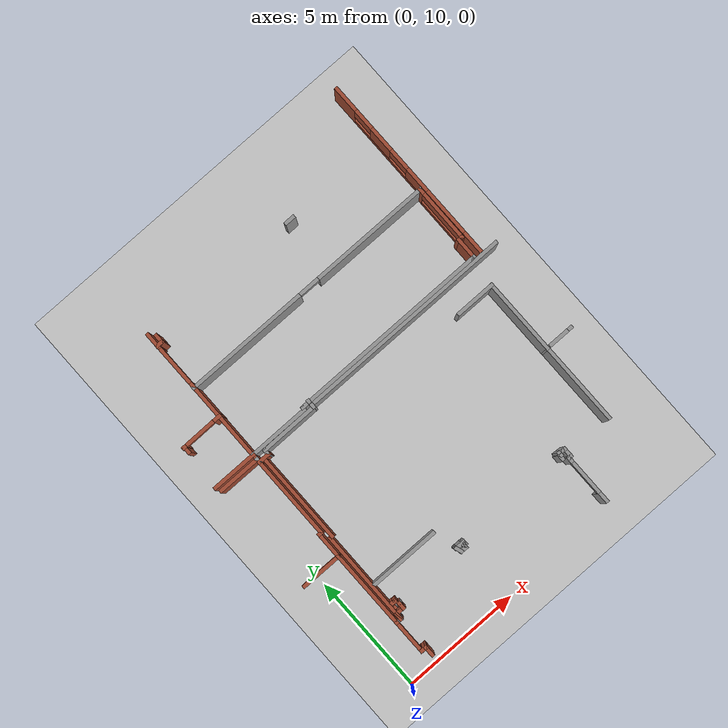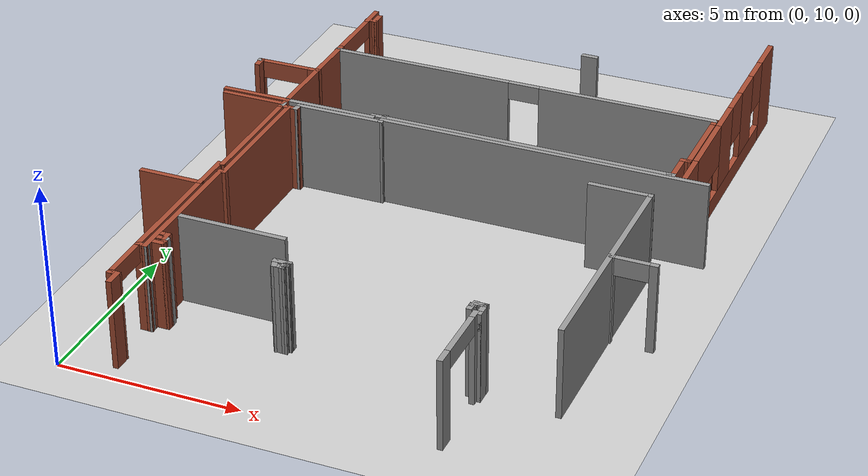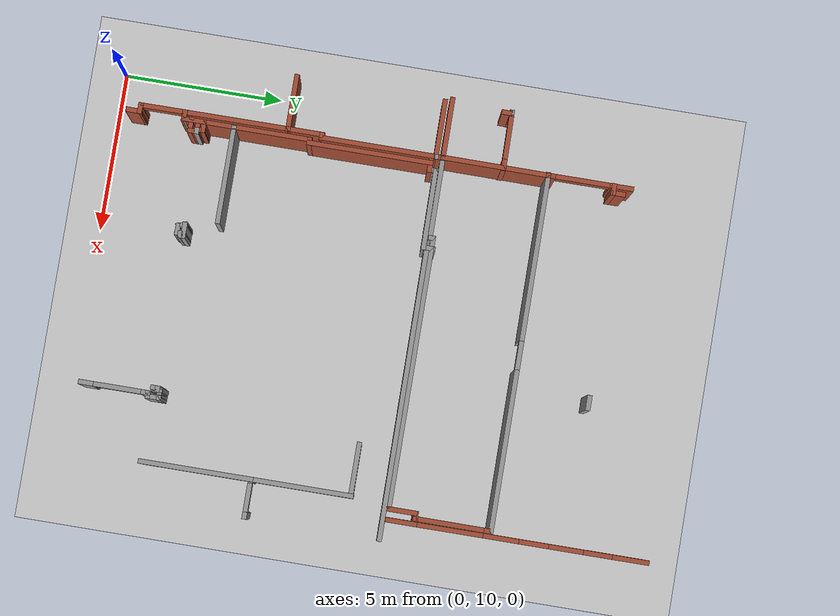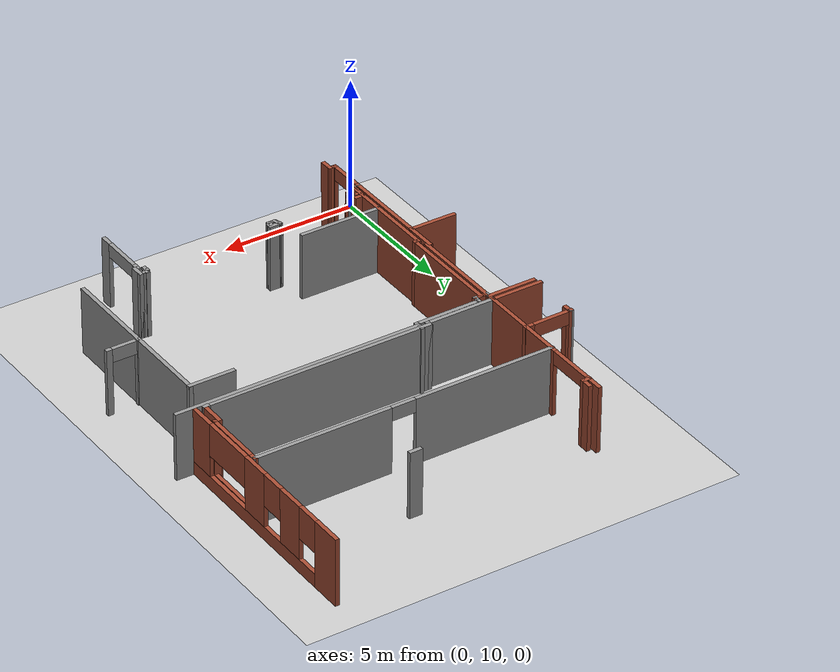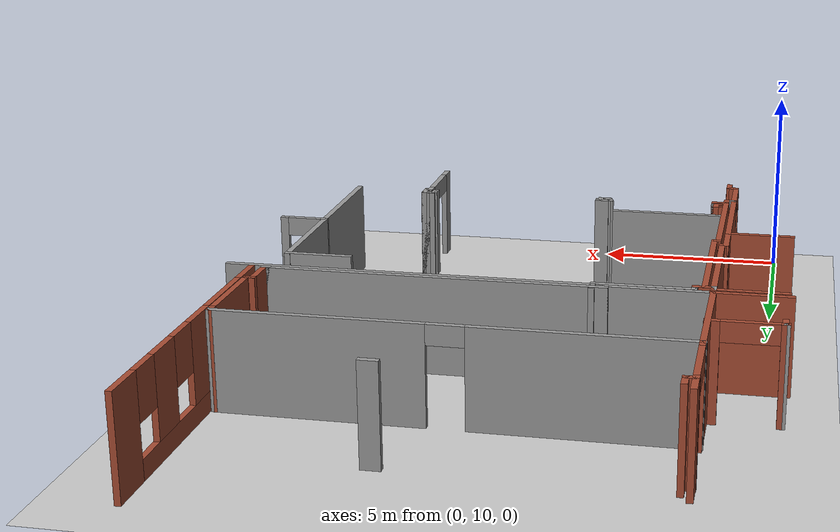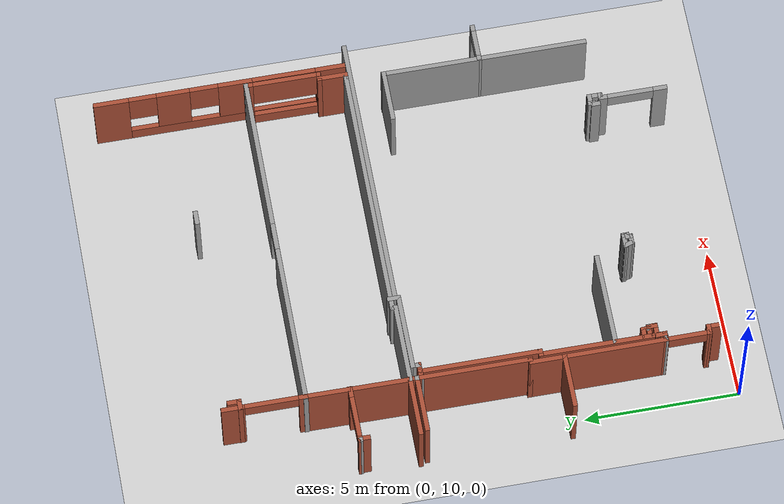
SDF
<sdf version="1.6">
 <world name="default">
  <model name="ground_plane">
   <static>1</static>
   <link name="link">
    <collision name="collision">
     <geometry><plane><normal>0 0 1</normal><size>100 100</size></plane></geometry>
     <surface><friction><ode><mu>100</mu><mu2>50</mu2></ode></friction></surface>
    </collision>
    <visual name="visual">
     <cast_shadows>0</cast_shadows>
     <geometry><plane><normal>0 0 1</normal><size>100 100</size></plane></geometry>
     <material>
      <script><uri>file://media/materials/scripts/gazebo.material</uri><name>Gazebo/Grey</name></script>
     </material>
    </visual>
   </link>
  </model>
  <model name="CVSSP">
   <pose>23.8714 24.094 0 0 -0 0</pose>
   <link name="Wall_440">
    <pose>-17.0303 -0.419062 0 0 -0 3.14158</pose>
    <visual name="Wall_440_Visual_0">
     <pose>-3.09878 0 1.25 0 -0 0</pose>
     <geometry><box><size>5.103 0.15 2.5</size></box></geometry>
     <material>
      <script><uri>file://media/materials/scripts/gazebo.material</uri><name>Gazebo/Grey</name></script>
      <ambient>0.588235 0.588235 0.588235 1</ambient>
     </material>
    </visual>
    <collision name="Wall_440_Collision_0">
     <geometry><box><size>5.103 0.15 2.5</size></box></geometry>
     <pose>-3.09878 0 1.25 0 -0 0</pose>
    </collision>
    <visual name="Wall_440_Visual_1">
     <pose>3.0015 0 1.25 0 -0 0</pose>
     <geometry><box><size>5.29756 0.15 2.5</size></box></geometry>
     <material>
      <script><uri>file://media/materials/scripts/gazebo.material</uri><name>Gazebo/Grey</name></script>
      <ambient>0.588235 0.588235 0.588235 1</ambient>
     </material>
    </visual>
    <collision name="Wall_440_Collision_1">
     <geometry><box><size>5.29756 0.15 2.5</size></box></geometry>
     <pose>3.0015 0 1.25 0 -0 0</pose>
    </collision>
    <visual name="Wall_440_Visual_2">
     <pose>-0.097282 0 2.25 0 -0 0</pose>
     <geometry><box><size>0.9 0.15 0.5</size></box></geometry>
     <material>
      <script><uri>file://media/materials/scripts/gazebo.material</uri><name>Gazebo/Grey</name></script>
      <ambient>0.588235 0.588235 0.588235 1</ambient>
     </material>
    </visual>
    <collision name="Wall_440_Collision_2">
     <geometry><box><size>0.9 0.15 0.5</size></box></geometry>
     <pose>-0.097282 0 2.25 0 -0 0</pose>
    </collision>
   </link>
   <link name="Wall_441">
    <pose>-22.5881 0.881009 0 0 -0 1.5708</pose>
    <visual name="Wall_441_Visual_0">
     <pose>-1.22545 0 1.25 0 -0 0</pose>
     <geometry><box><size>0.299105 0.15 2.5</size></box></geometry>
     <material>
      <script><uri>file://media/materials/scripts/gazebo.material</uri><name>Gazebo/Bricks</name></script>
      <ambient>1 1 1 1</ambient>
     </material>
    </visual>
    <collision name="Wall_441_Collision_0">
     <geometry><box><size>0.299105 0.15 2.5</size></box></geometry>
     <pose>-1.22545 0 1.25 0 -0 0</pose>
    </collision>
    <visual name="Wall_441_Visual_1">
     <pose>1.00205 0 1.25 0 -0 0</pose>
     <geometry><box><size>0.745895 0.15 2.5</size></box></geometry>
     <material>
      <script><uri>file://media/materials/scripts/gazebo.material</uri><name>Gazebo/Bricks</name></script>
      <ambient>1 1 1 1</ambient>
     </material>
    </visual>
    <collision name="Wall_441_Collision_1">
     <geometry><box><size>0.745895 0.15 2.5</size></box></geometry>
     <pose>1.00205 0 1.25 0 -0 0</pose>
    </collision>
    <visual name="Wall_441_Visual_2">
     <pose>-0.223395 0 2.25 0 -0 0</pose>
     <geometry><box><size>1.705 0.15 0.5</size></box></geometry>
     <material>
      <script><uri>file://media/materials/scripts/gazebo.material</uri><name>Gazebo/Bricks</name></script>
      <ambient>1 1 1 1</ambient>
     </material>
    </visual>
    <collision name="Wall_441_Collision_2">
     <geometry><box><size>1.705 0.15 0.5</size></box></geometry>
     <pose>-0.223395 0 2.25 0 -0 0</pose>
    </collision>
   </link>
   <link name="Wall_446">
    <collision name="Wall_446_Collision">
     <geometry><box><size>3.45993 0.15 2.5</size></box></geometry>
     <pose>0 0 1.25 0 -0 0</pose>
    </collision>
    <visual name="Wall_446_Visual">
     <pose>0 0 1.25 0 -0 0</pose>
     <geometry><box><size>3.45993 0.15 2.5</size></box></geometry>
     <material>
      <script><uri>file://media/materials/scripts/gazebo.material</uri><name>Gazebo/Bricks</name></script>
      <ambient>1 1 1 1</ambient>
     </material>
    </visual>
    <pose>-22.5968 -2.07393 0 0 0 -1.57608</pose>
   </link>
   <link name="Wall_447">
    <collision name="Wall_447_Collision">
     <geometry><box><size>2.66471 0.15 2.5</size></box></geometry>
     <pose>0 0 1.25 0 -0 0</pose>
    </collision>
    <visual name="Wall_447_Visual">
     <pose>0 0 1.25 0 -0 0</pose>
     <geometry><box><size>2.66471 0.15 2.5</size></box></geometry>
     <material>
      <script><uri>file://media/materials/scripts/gazebo.material</uri><name>Gazebo/Grey</name></script>
      <ambient>0.588235 0.588235 0.588235 1</ambient>
     </material>
    </visual>
    <pose>-21.3307 -3.72683 0 0 -0 0.001626</pose>
   </link>
   <link name="Wall_449">
    <collision name="Wall_449_Collision">
     <geometry><box><size>0.25 0.15 2.5</size></box></geometry>
     <pose>0 0 1.25 0 -0 0</pose>
    </collision>
    <visual name="Wall_449_Visual">
     <pose>0 0 1.25 0 -0 0</pose>
     <geometry><box><size>0.25 0.15 2.5</size></box></geometry>
     <material>
      <script><uri>file://media/materials/scripts/gazebo.material</uri><name>Gazebo/Grey</name></script>
      <ambient>1 1 1 1</ambient>
     </material>
    </visual>
    <pose>-20.0734 -3.67478 0 0 -0 1.5708</pose>
   </link>
   <link name="Wall_450">
    <collision name="Wall_450_Collision">
     <geometry><box><size>8.5 0.15 2.5</size></box></geometry>
     <pose>0 0 1.25 0 -0 0</pose>
    </collision>
    <visual name="Wall_450_Visual">
     <pose>0 0 1.25 0 -0 0</pose>
     <geometry><box><size>8.5 0.15 2.5</size></box></geometry>
     <material>
      <script><uri>file://media/materials/scripts/gazebo.material</uri><name>Gazebo/Grey</name></script>
      <ambient>0.588235 0.588235 0.588235 1</ambient>
     </material>
    </visual>
    <pose>-15.8984 -3.62478 0 0 -0 0</pose>
   </link>
   <link name="Wall_451">
    <collision name="Wall_451_Collision">
     <geometry><box><size>0.25 0.15 2.5</size></box></geometry>
     <pose>0 0 1.25 0 -0 0</pose>
    </collision>
    <visual name="Wall_451_Visual">
     <pose>0 0 1.25 0 -0 0</pose>
     <geometry><box><size>0.25 0.15 2.5</size></box></geometry>
     <material>
      <script><uri>file://media/materials/scripts/gazebo.material</uri><name>Gazebo/Grey</name></script>
      <ambient>1 1 1 1</ambient>
     </material>
    </visual>
    <pose>-11.6734 -3.62478 0 0 -0 0</pose>
   </link>
   <link name="Wall_452">
    <collision name="Wall_452_Collision">
     <geometry><box><size>1 0.15 2.5</size></box></geometry>
     <pose>0 0 1.25 0 -0 0</pose>
    </collision>
    <visual name="Wall_452_Visual">
     <pose>0 0 1.25 0 -0 0</pose>
     <geometry><box><size>1 0.15 2.5</size></box></geometry>
     <material>
      <script><uri>file://media/materials/scripts/gazebo.material</uri><name>Gazebo/Bricks</name></script>
      <ambient>1 1 1 1</ambient>
     </material>
    </visual>
    <pose>-11.6234 -3.19978 0 0 -0 1.5708</pose>
   </link>
   <link name="Wall_453">
    <collision name="Wall_453_Collision">
     <geometry><box><size>0.31087 0.15 2.5</size></box></geometry>
     <pose>0 0 1.25 0 -0 0</pose>
    </collision>
    <visual name="Wall_453_Visual">
     <pose>0 0 1.25 0 -0 0</pose>
     <geometry><box><size>0.31087 0.15 2.5</size></box></geometry>
     <material>
      <script><uri>file://media/materials/scripts/gazebo.material</uri><name>Gazebo/Bricks</name></script>
      <ambient>1 1 1 1</ambient>
     </material>
    </visual>
    <pose>-11.543 -2.77478 0 0 -0 0</pose>
   </link>
   <link name="Wall_456">
    <pose>-11.4588 -1.59696 0 0 0 -1.57398</pose>
    <visual name="Wall_456_Visual_0">
     <pose>-1.10718 0 1.25 0 -0 0</pose>
     <geometry><box><size>0.291309 0.15 2.5</size></box></geometry>
     <material>
      <script><uri>file://media/materials/scripts/gazebo.material</uri><name>Gazebo/Bricks</name></script>
      <ambient>1 1 1 1</ambient>
     </material>
    </visual>
    <collision name="Wall_456_Collision_0">
     <geometry><box><size>0.291309 0.15 2.5</size></box></geometry>
     <pose>-1.10718 0 1.25 0 -0 0</pose>
    </collision>
    <visual name="Wall_456_Visual_1">
     <pose>0.145655 0 0.25 0 -0 0</pose>
     <geometry><box><size>2.21435 0.15 0.5</size></box></geometry>
     <material>
      <script><uri>file://media/materials/scripts/gazebo.material</uri><name>Gazebo/Bricks</name></script>
      <ambient>1 1 1 1</ambient>
     </material>
    </visual>
    <collision name="Wall_456_Collision_1">
     <geometry><box><size>2.21435 0.15 0.5</size></box></geometry>
     <pose>0.145655 0 0.25 0 -0 0</pose>
    </collision>
    <visual name="Wall_456_Visual_2">
     <pose>1.18044 0 1.5 0 -0 0</pose>
     <geometry><box><size>0.144785 0.15 2</size></box></geometry>
     <material>
      <script><uri>file://media/materials/scripts/gazebo.material</uri><name>Gazebo/Bricks</name></script>
      <ambient>1 1 1 1</ambient>
     </material>
    </visual>
    <collision name="Wall_456_Collision_2">
     <geometry><box><size>0.144785 0.15 2</size></box></geometry>
     <pose>1.18044 0 1.5 0 -0 0</pose>
    </collision>
    <visual name="Wall_456_Visual_3">
     <pose>0.073262 0 1.9 0 -0 0</pose>
     <geometry><box><size>2.06957 0.15 1.2</size></box></geometry>
     <material>
      <script><uri>file://media/materials/scripts/gazebo.material</uri><name>Gazebo/Bricks</name></script>
      <ambient>1 1 1 1</ambient>
     </material>
    </visual>
    <collision name="Wall_456_Collision_3">
     <geometry><box><size>2.06957 0.15 1.2</size></box></geometry>
     <pose>0.073262 0 1.9 0 -0 0</pose>
    </collision>
   </link>
   <link name="Wall_462">
    <pose>-11.2891 0.422048 0 0 0 -1.5708</pose>
    <visual name="Wall_462_Visual_0">
     <pose>-3.525 0 1.25 0 -0 0</pose>
     <geometry><box><size>1.14727 0.15 2.5</size></box></geometry>
     <material>
      <script><uri>file://media/materials/scripts/gazebo.material</uri><name>Gazebo/Bricks</name></script>
      <ambient>1 1 1 1</ambient>
     </material>
    </visual>
    <collision name="Wall_462_Collision_0">
     <geometry><box><size>1.14727 0.15 2.5</size></box></geometry>
     <pose>-3.525 0 1.25 0 -0 0</pose>
    </collision>
    <visual name="Wall_462_Visual_1">
     <pose>0.573634 0 0.25 0 -0 0</pose>
     <geometry><box><size>7.04999 0.15 0.5</size></box></geometry>
     <material>
      <script><uri>file://media/materials/scripts/gazebo.material</uri><name>Gazebo/Bricks</name></script>
      <ambient>1 1 1 1</ambient>
     </material>
    </visual>
    <collision name="Wall_462_Collision_1">
     <geometry><box><size>7.04999 0.15 0.5</size></box></geometry>
     <pose>0.573634 0 0.25 0 -0 0</pose>
    </collision>
    <visual name="Wall_462_Visual_2">
     <pose>-1.51444 0 1.5 0 -0 0</pose>
     <geometry><box><size>1.07833 0.15 2</size></box></geometry>
     <material>
      <script><uri>file://media/materials/scripts/gazebo.material</uri><name>Gazebo/Bricks</name></script>
      <ambient>1 1 1 1</ambient>
     </material>
    </visual>
    <collision name="Wall_462_Collision_2">
     <geometry><box><size>1.07833 0.15 2</size></box></geometry>
     <pose>-1.51444 0 1.5 0 -0 0</pose>
    </collision>
    <visual name="Wall_462_Visual_3">
     <pose>0.505032 0 1.5 0 -0 0</pose>
     <geometry><box><size>1.11295 0.15 2</size></box></geometry>
     <material>
      <script><uri>file://media/materials/scripts/gazebo.material</uri><name>Gazebo/Bricks</name></script>
      <ambient>1 1 1 1</ambient>
     </material>
    </visual>
    <collision name="Wall_462_Collision_3">
     <geometry><box><size>1.11295 0.15 2</size></box></geometry>
     <pose>0.505032 0 1.5 0 -0 0</pose>
    </collision>
    <visual name="Wall_462_Visual_4">
     <pose>3.60899 0 1.5 0 -0 0</pose>
     <geometry><box><size>0.979272 0.15 2</size></box></geometry>
     <material>
      <script><uri>file://media/materials/scripts/gazebo.material</uri><name>Gazebo/Bricks</name></script>
      <ambient>1 1 1 1</ambient>
     </material>
    </visual>
    <collision name="Wall_462_Collision_4">
     <geometry><box><size>0.979272 0.15 2</size></box></geometry>
     <pose>3.60899 0 1.5 0 -0 0</pose>
    </collision>
    <visual name="Wall_462_Visual_5">
     <pose>-2.50248 0 1.9 0 -0 0</pose>
     <geometry><box><size>0.89776 0.15 1.2</size></box></geometry>
     <material>
      <script><uri>file://media/materials/scripts/gazebo.material</uri><name>Gazebo/Bricks</name></script>
      <ambient>1 1 1 1</ambient>
     </material>
    </visual>
    <collision name="Wall_462_Collision_5">
     <geometry><box><size>0.89776 0.15 1.2</size></box></geometry>
     <pose>-2.50248 0 1.9 0 -0 0</pose>
    </collision>
    <visual name="Wall_462_Visual_6">
     <pose>-0.513357 0 1.9 0 -0 0</pose>
     <geometry><box><size>0.92383 0.15 1.2</size></box></geometry>
     <material>
      <script><uri>file://media/materials/scripts/gazebo.material</uri><name>Gazebo/Bricks</name></script>
      <ambient>1 1 1 1</ambient>
     </material>
    </visual>
    <collision name="Wall_462_Collision_6">
     <geometry><box><size>0.92383 0.15 1.2</size></box></geometry>
     <pose>-0.513357 0 1.9 0 -0 0</pose>
    </collision>
    <visual name="Wall_462_Visual_7">
     <pose>2.09043 0 1.9 0 -0 0</pose>
     <geometry><box><size>2.05785 0.15 1.2</size></box></geometry>
     <material>
      <script><uri>file://media/materials/scripts/gazebo.material</uri><name>Gazebo/Bricks</name></script>
      <ambient>1 1 1 1</ambient>
     </material>
    </visual>
    <collision name="Wall_462_Collision_7">
     <geometry><box><size>2.05785 0.15 1.2</size></box></geometry>
     <pose>2.09043 0 1.9 0 -0 0</pose>
    </collision>
   </link>
   <link name="Wall_472">
    <pose>-23.462 -1.83453 0 0 0 -3.13211</pose>
    <visual name="Wall_472_Visual_0">
     <pose>-0.773733 0 1.25 0 -0 0</pose>
     <geometry><box><size>0.368389 0.15 2.5</size></box></geometry>
     <material>
      <script><uri>file://media/materials/scripts/gazebo.material</uri><name>Gazebo/Bricks</name></script>
      <ambient>1 1 1 1</ambient>
     </material>
    </visual>
    <collision name="Wall_472_Collision_0">
     <geometry><box><size>0.368389 0.15 2.5</size></box></geometry>
     <pose>-0.773733 0 1.25 0 -0 0</pose>
    </collision>
    <visual name="Wall_472_Visual_1">
     <pose>0.857678 0 1.25 0 -0 0</pose>
     <geometry><box><size>0.2005 0.15 2.5</size></box></geometry>
     <material>
      <script><uri>file://media/materials/scripts/gazebo.material</uri><name>Gazebo/Bricks</name></script>
      <ambient>1 1 1 1</ambient>
     </material>
    </visual>
    <collision name="Wall_472_Collision_1">
     <geometry><box><size>0.2005 0.15 2.5</size></box></geometry>
     <pose>0.857678 0 1.25 0 -0 0</pose>
    </collision>
    <visual name="Wall_472_Visual_2">
     <pose>0.083944 0 2.25 0 -0 0</pose>
     <geometry><box><size>1.34697 0.15 0.5</size></box></geometry>
     <material>
      <script><uri>file://media/materials/scripts/gazebo.material</uri><name>Gazebo/Bricks</name></script>
      <ambient>1 1 1 1</ambient>
     </material>
    </visual>
    <collision name="Wall_472_Collision_2">
     <geometry><box><size>1.34697 0.15 0.5</size></box></geometry>
     <pose>0.083944 0 2.25 0 -0 0</pose>
    </collision>
   </link>
   <link name="Wall_473">
    <collision name="Wall_473_Collision">
     <geometry><box><size>0.15 0.15 2.5</size></box></geometry>
     <pose>0 0 1.25 0 -0 0</pose>
    </collision>
    <visual name="Wall_473_Visual">
     <pose>0 0 1.25 0 -0 0</pose>
     <geometry><box><size>0.15 0.15 2.5</size></box></geometry>
     <material>
      <script><uri>file://media/materials/scripts/gazebo.material</uri><name>Gazebo/Grey</name></script>
      <ambient>1 1 1 1</ambient>
     </material>
    </visual>
    <pose>-24.3449 -1.8429 0 0 -0 0</pose>
   </link>
   <link name="Wall_476">
    <collision name="Wall_476_Collision">
     <geometry><box><size>0.342391 0.15 2.5</size></box></geometry>
     <pose>0 0 1.25 0 -0 0</pose>
    </collision>
    <visual name="Wall_476_Visual">
     <pose>0 0 1.25 0 -0 0</pose>
     <geometry><box><size>0.342391 0.15 2.5</size></box></geometry>
     <material>
      <script><uri>file://media/materials/scripts/gazebo.material</uri><name>Gazebo/Bricks</name></script>
      <ambient>1 1 1 1</ambient>
     </material>
    </visual>
    <pose>-24.3099 -1.99157 0 0 -0 1.5708</pose>
   </link>
   <link name="Wall_481">
    <collision name="Wall_481_Collision">
     <geometry><box><size>2 0.15 2.5</size></box></geometry>
     <pose>0 0 1.25 0 -0 0</pose>
    </collision>
    <visual name="Wall_481_Visual">
     <pose>0 0 1.25 0 -0 0</pose>
     <geometry><box><size>2 0.15 2.5</size></box></geometry>
     <material>
      <script><uri>file://media/materials/scripts/gazebo.material</uri><name>Gazebo/Bricks</name></script>
      <ambient>1 1 1 1</ambient>
     </material>
    </visual>
    <pose>-23.5131 -3.72887 0 0 -0 3.14159</pose>
   </link>
   <link name="Wall_483">
    <collision name="Wall_483_Collision">
     <geometry><box><size>0.368526 0.15 2.5</size></box></geometry>
     <pose>0 0 1.25 0 -0 0</pose>
    </collision>
    <visual name="Wall_483_Visual">
     <pose>0 0 1.25 0 -0 0</pose>
     <geometry><box><size>0.368526 0.15 2.5</size></box></geometry>
     <material>
      <script><uri>file://media/materials/scripts/gazebo.material</uri><name>Gazebo/Bricks</name></script>
      <ambient>1 1 1 1</ambient>
     </material>
    </visual>
    <pose>-22.5906 -3.83811 0 0 0 -1.59404</pose>
   </link>
   <link name="Wall_484">
    <collision name="Wall_484_Collision">
     <geometry><box><size>1.89901 0.15 2.5</size></box></geometry>
     <pose>0 0 1.25 0 -0 0</pose>
    </collision>
    <visual name="Wall_484_Visual">
     <pose>0 0 1.25 0 -0 0</pose>
     <geometry><box><size>1.89901 0.15 2.5</size></box></geometry>
     <material>
      <script><uri>file://media/materials/scripts/gazebo.material</uri><name>Gazebo/Bricks</name></script>
      <ambient>1 1 1 1</ambient>
     </material>
    </visual>
    <pose>-23.4677 -3.94734 0 0 -0 3.14159</pose>
   </link>
   <link name="Wall_486">
    <collision name="Wall_486_Collision">
     <geometry><box><size>0.44095 0.15 2.5</size></box></geometry>
     <pose>0 0 1.25 0 -0 0</pose>
    </collision>
    <visual name="Wall_486_Visual">
     <pose>0 0 1.25 0 -0 0</pose>
     <geometry><box><size>0.44095 0.15 2.5</size></box></geometry>
     <material>
      <script><uri>file://media/materials/scripts/gazebo.material</uri><name>Gazebo/Grey</name></script>
      <ambient>1 1 1 1</ambient>
     </material>
    </visual>
    <pose>-19.7491 -3.7278 0 0 0 -1.5708</pose>
   </link>
   <link name="Wall_487">
    <collision name="Wall_487_Collision">
     <geometry><box><size>2.55302 0.15 2.5</size></box></geometry>
     <pose>0 0 1.25 0 -0 0</pose>
    </collision>
    <visual name="Wall_487_Visual">
     <pose>0 0 1.25 0 -0 0</pose>
     <geometry><box><size>2.55302 0.15 2.5</size></box></geometry>
     <material>
      <script><uri>file://media/materials/scripts/gazebo.material</uri><name>Gazebo/Grey</name></script>
      <ambient>0.588235 0.588235 0.588235 1</ambient>
     </material>
    </visual>
    <pose>-20.9506 -3.87989 0 0 0 -3.13609</pose>
   </link>
   <link name="Wall_488">
    <collision name="Wall_488_Collision">
     <geometry><box><size>0.348298 0.15 2.5</size></box></geometry>
     <pose>0 0 1.25 0 -0 0</pose>
    </collision>
    <visual name="Wall_488_Visual">
     <pose>0 0 1.25 0 -0 0</pose>
     <geometry><box><size>0.348298 0.15 2.5</size></box></geometry>
     <material>
      <script><uri>file://media/materials/scripts/gazebo.material</uri><name>Gazebo/Grey</name></script>
      <ambient>1 1 1 1</ambient>
     </material>
    </visual>
    <pose>-22.1597 -3.98536 0 0 0 -1.64757</pose>
   </link>
   <link name="Wall_490">
    <collision name="Wall_490_Collision">
     <geometry><box><size>0.287462 0.15 2.5</size></box></geometry>
     <pose>0 0 1.25 0 -0 0</pose>
    </collision>
    <visual name="Wall_490_Visual">
     <pose>0 0 1.25 0 -0 0</pose>
     <geometry><box><size>0.287462 0.15 2.5</size></box></geometry>
     <material>
      <script><uri>file://media/materials/scripts/gazebo.material</uri><name>Gazebo/Grey</name></script>
      <ambient>1 1 1 1</ambient>
     </material>
    </visual>
    <pose>-22.5946 -4.01605 0 0 0 -1.59176</pose>
   </link>
   <link name="Wall_491">
    <collision name="Wall_491_Collision">
     <geometry><box><size>0.593962 0.15 2.5</size></box></geometry>
     <pose>0 0 1.25 0 -0 0</pose>
    </collision>
    <visual name="Wall_491_Visual">
     <pose>0 0 1.25 0 -0 0</pose>
     <geometry><box><size>0.593962 0.15 2.5</size></box></geometry>
     <material>
      <script><uri>file://media/materials/scripts/gazebo.material</uri><name>Gazebo/Bricks</name></script>
      <ambient>1 1 1 1</ambient>
     </material>
    </visual>
    <pose>-22.3741 -4.08449 0 0 -0 0.001245</pose>
   </link>
   <link name="Wall_493">
    <collision name="Wall_493_Collision">
     <geometry><box><size>3.61071 0.15 2.5</size></box></geometry>
     <pose>0 0 1.25 0 -0 0</pose>
    </collision>
    <visual name="Wall_493_Visual">
     <pose>0 0 1.25 0 -0 0</pose>
     <geometry><box><size>3.61071 0.15 2.5</size></box></geometry>
     <material>
      <script><uri>file://media/materials/scripts/gazebo.material</uri><name>Gazebo/Bricks</name></script>
      <ambient>1 1 1 1</ambient>
     </material>
    </visual>
    <pose>-22.5979 -5.81513 0 0 0 -1.57189</pose>
   </link>
   <link name="Wall_494">
    <collision name="Wall_494_Collision">
     <geometry><box><size>0.25 0.15 2.5</size></box></geometry>
     <pose>0 0 1.25 0 -0 0</pose>
    </collision>
    <visual name="Wall_494_Visual">
     <pose>0 0 1.25 0 -0 0</pose>
     <geometry><box><size>0.25 0.15 2.5</size></box></geometry>
     <material>
      <script><uri>file://media/materials/scripts/gazebo.material</uri><name>Gazebo/Bricks</name></script>
      <ambient>1 1 1 1</ambient>
     </material>
    </visual>
    <pose>-22.6498 -7.54548 0 0 -0 3.14159</pose>
   </link>
   <link name="Wall_495">
    <collision name="Wall_495_Collision">
     <geometry><box><size>1.21522 0.15 2.5</size></box></geometry>
     <pose>0 0 1.25 0 -0 0</pose>
    </collision>
    <visual name="Wall_495_Visual">
     <pose>0 0 1.25 0 -0 0</pose>
     <geometry><box><size>1.21522 0.15 2.5</size></box></geometry>
     <material>
      <script><uri>file://media/materials/scripts/gazebo.material</uri><name>Gazebo/Bricks</name></script>
      <ambient>1 1 1 1</ambient>
     </material>
    </visual>
    <pose>-22.6998 -8.07809 0 0 0 -1.5708</pose>
   </link>
   <link name="Wall_497">
    <collision name="Wall_497_Collision">
     <geometry><box><size>1.80653 0.15 2.5</size></box></geometry>
     <pose>0 0 1.25 0 -0 0</pose>
    </collision>
    <visual name="Wall_497_Visual">
     <pose>0 0 1.25 0 -0 0</pose>
     <geometry><box><size>1.80653 0.15 2.5</size></box></geometry>
     <material>
      <script><uri>file://media/materials/scripts/gazebo.material</uri><name>Gazebo/Bricks</name></script>
      <ambient>1 1 1 1</ambient>
     </material>
    </visual>
    <pose>-23.5281 -8.61722 0 0 -0 3.13897</pose>
   </link>
   <link name="Wall_500">
    <collision name="Wall_500_Collision">
     <geometry><box><size>3.96739 0.15 2.5</size></box></geometry>
     <pose>0 0 1.25 0 -0 0</pose>
    </collision>
    <visual name="Wall_500_Visual">
     <pose>0 0 1.25 0 -0 0</pose>
     <geometry><box><size>3.96739 0.15 2.5</size></box></geometry>
     <material>
      <script><uri>file://media/materials/scripts/gazebo.material</uri><name>Gazebo/Bricks</name></script>
      <ambient>1 1 1 1</ambient>
     </material>
    </visual>
    <pose>-22.3824 -5.99331 0 0 0 -1.5708</pose>
   </link>
   <link name="Wall_502">
    <collision name="Wall_502_Collision">
     <geometry><box><size>0.25 0.15 2.5</size></box></geometry>
     <pose>0 0 1.25 0 -0 0</pose>
    </collision>
    <visual name="Wall_502_Visual">
     <pose>0 0 1.25 0 -0 0</pose>
     <geometry><box><size>0.25 0.15 2.5</size></box></geometry>
     <material>
      <script><uri>file://media/materials/scripts/gazebo.material</uri><name>Gazebo/Bricks</name></script>
      <ambient>1 1 1 1</ambient>
     </material>
    </visual>
    <pose>-22.4324 -7.902 0 0 -0 3.14159</pose>
   </link>
   <link name="Wall_503">
    <collision name="Wall_503_Collision">
     <geometry><box><size>4.11037 0.15 2.5</size></box></geometry>
     <pose>0 0 1.25 0 -0 0</pose>
    </collision>
    <visual name="Wall_503_Visual">
     <pose>0 0 1.25 0 -0 0</pose>
     <geometry><box><size>4.11037 0.15 2.5</size></box></geometry>
     <material>
      <script><uri>file://media/materials/scripts/gazebo.material</uri><name>Gazebo/Bricks</name></script>
      <ambient>1 1 1 1</ambient>
     </material>
    </visual>
    <pose>-22.4867 -9.88218 0 0 0 -1.57292</pose>
   </link>
   <link name="Wall_519">
    <collision name="Wall_519_Collision">
     <geometry><box><size>0.25 0.15 2.5</size></box></geometry>
     <pose>0 0 1.25 0 -0 0</pose>
    </collision>
    <visual name="Wall_519_Visual">
     <pose>0 0 1.25 0 -0 0</pose>
     <geometry><box><size>0.25 0.15 2.5</size></box></geometry>
     <material>
      <script><uri>file://media/materials/scripts/gazebo.material</uri><name>Gazebo/Bricks</name></script>
      <ambient>1 1 1 1</ambient>
     </material>
    </visual>
    <pose>-22.3838 -11.3942 0 0 -0 3.14159</pose>
   </link>
   <link name="Wall_521">
    <collision name="Wall_521_Collision">
     <geometry><box><size>0.355195 0.15 2.5</size></box></geometry>
     <pose>0 0 1.25 0 -0 0</pose>
    </collision>
    <visual name="Wall_521_Visual">
     <pose>0 0 1.25 0 -0 0</pose>
     <geometry><box><size>0.355195 0.15 2.5</size></box></geometry>
     <material>
      <script><uri>file://media/materials/scripts/gazebo.material</uri><name>Gazebo/Grey</name></script>
      <ambient>1 1 1 1</ambient>
     </material>
    </visual>
    <pose>-22.5934 -11.8574 0 0 -0 3.09357</pose>
   </link>
   <link name="Wall_522">
    <collision name="Wall_522_Collision">
     <geometry><box><size>3.38312 0.15 2.5</size></box></geometry>
     <pose>0 0 1.25 0 -0 0</pose>
    </collision>
    <visual name="Wall_522_Visual">
     <pose>0 0 1.25 0 -0 0</pose>
     <geometry><box><size>3.38312 0.15 2.5</size></box></geometry>
     <material>
      <script><uri>file://media/materials/scripts/gazebo.material</uri><name>Gazebo/Bricks</name></script>
      <ambient>1 1 1 1</ambient>
     </material>
    </visual>
    <pose>-22.6978 -10.236 0 0 -0 1.57204</pose>
   </link>
   <link name="Wall_525">
    <pose>-11.2447 -7.9568 0 0 -0 3.13973</pose>
    <visual name="Wall_525_Visual_0">
     <pose>-0.544548 0 1.25 0 -0 0</pose>
     <geometry><box><size>0.220502 0.15 2.5</size></box></geometry>
     <material>
      <script><uri>file://media/materials/scripts/gazebo.material</uri><name>Gazebo/Grey</name></script>
      <ambient>0.588235 0.588235 0.588235 1</ambient>
     </material>
    </visual>
    <collision name="Wall_525_Collision_0">
     <geometry><box><size>0.220502 0.15 2.5</size></box></geometry>
     <pose>-0.544548 0 1.25 0 -0 0</pose>
    </collision>
    <visual name="Wall_525_Visual_1">
     <pose>0.560251 0 1.25 0 -0 0</pose>
     <geometry><box><size>0.189095 0.15 2.5</size></box></geometry>
     <material>
      <script><uri>file://media/materials/scripts/gazebo.material</uri><name>Gazebo/Grey</name></script>
      <ambient>0.588235 0.588235 0.588235 1</ambient>
     </material>
    </visual>
    <collision name="Wall_525_Collision_1">
     <geometry><box><size>0.189095 0.15 2.5</size></box></geometry>
     <pose>0.560251 0 1.25 0 -0 0</pose>
    </collision>
    <visual name="Wall_525_Visual_2">
     <pose>0.015703 0 2.25 0 -0 0</pose>
     <geometry><box><size>0.9 0.15 0.5</size></box></geometry>
     <material>
      <script><uri>file://media/materials/scripts/gazebo.material</uri><name>Gazebo/Grey</name></script>
      <ambient>0.588235 0.588235 0.588235 1</ambient>
     </material>
    </visual>
    <collision name="Wall_525_Collision_2">
     <geometry><box><size>0.9 0.15 0.5</size></box></geometry>
     <pose>0.015703 0 2.25 0 -0 0</pose>
    </collision>
   </link>
   <link name="Wall_526">
    <collision name="Wall_526_Collision">
     <geometry><box><size>3.58305 0.15 2.5</size></box></geometry>
     <pose>0 0 1.25 0 -0 0</pose>
    </collision>
    <visual name="Wall_526_Visual">
     <pose>0 0 1.25 0 -0 0</pose>
     <geometry><box><size>3.58305 0.15 2.5</size></box></geometry>
     <material>
      <script><uri>file://media/materials/scripts/gazebo.material</uri><name>Gazebo/Grey</name></script>
      <ambient>0.588235 0.588235 0.588235 1</ambient>
     </material>
    </visual>
    <pose>-11.8234 -9.67224 0 0 0 -1.5702</pose>
   </link>
   <link name="Wall_531">
    <collision name="Wall_531_Collision">
     <geometry><box><size>3.27645 0.15 2.5</size></box></geometry>
     <pose>0 0 1.25 0 -0 0</pose>
    </collision>
    <visual name="Wall_531_Visual">
     <pose>0 0 1.25 0 -0 0</pose>
     <geometry><box><size>3.27645 0.15 2.5</size></box></geometry>
     <material>
      <script><uri>file://media/materials/scripts/gazebo.material</uri><name>Gazebo/Grey</name></script>
      <ambient>0.588235 0.588235 0.588235 1</ambient>
     </material>
    </visual>
    <pose>-11.8245 -6.39249 0 0 -0 1.5708</pose>
   </link>
   <link name="Wall_555">
    <pose>-13.9279 -12.5683 0 0 -0 1.5708</pose>
    <visual name="Wall_555_Visual_0">
     <pose>-0.893147 0 1.25 0 -0 0</pose>
     <geometry><box><size>0.463706 0.15 2.5</size></box></geometry>
     <material>
      <script><uri>file://media/materials/scripts/gazebo.material</uri><name>Gazebo/Grey</name></script>
      <ambient>0.588235 0.588235 0.588235 1</ambient>
     </material>
    </visual>
    <collision name="Wall_555_Collision_0">
     <geometry><box><size>0.463706 0.15 2.5</size></box></geometry>
     <pose>-0.893147 0 1.25 0 -0 0</pose>
    </collision>
    <visual name="Wall_555_Visual_1">
     <pose>0.977735 0 1.25 0 -0 0</pose>
     <geometry><box><size>0.29453 0.15 2.5</size></box></geometry>
     <material>
      <script><uri>file://media/materials/scripts/gazebo.material</uri><name>Gazebo/Grey</name></script>
      <ambient>0.588235 0.588235 0.588235 1</ambient>
     </material>
    </visual>
    <collision name="Wall_555_Collision_1">
     <geometry><box><size>0.29453 0.15 2.5</size></box></geometry>
     <pose>0.977735 0 1.25 0 -0 0</pose>
    </collision>
    <visual name="Wall_555_Visual_2">
     <pose>0.084588 0 2.25 0 -0 0</pose>
     <geometry><box><size>1.49177 0.15 0.5</size></box></geometry>
     <material>
      <script><uri>file://media/materials/scripts/gazebo.material</uri><name>Gazebo/Grey</name></script>
      <ambient>0.588235 0.588235 0.588235 1</ambient>
     </material>
    </visual>
    <collision name="Wall_555_Collision_2">
     <geometry><box><size>1.49177 0.15 0.5</size></box></geometry>
     <pose>0.084588 0 2.25 0 -0 0</pose>
    </collision>
   </link>
   <link name="Wall_556">
    <collision name="Wall_556_Collision">
     <geometry><box><size>0.25 0.15 2.5</size></box></geometry>
     <pose>0 0 1.25 0 -0 0</pose>
    </collision>
    <visual name="Wall_556_Visual">
     <pose>0 0 1.25 0 -0 0</pose>
     <geometry><box><size>0.25 0.15 2.5</size></box></geometry>
     <material>
      <script><uri>file://media/materials/scripts/gazebo.material</uri><name>Gazebo/Grey</name></script>
      <ambient>1 1 1 1</ambient>
     </material>
    </visual>
    <pose>-13.8779 -11.5183 0 0 -0 0</pose>
   </link>
   <link name="Wall_557">
    <collision name="Wall_557_Collision">
     <geometry><box><size>0.5 0.15 2.5</size></box></geometry>
     <pose>0 0 1.25 0 -0 0</pose>
    </collision>
    <visual name="Wall_557_Visual">
     <pose>0 0 1.25 0 -0 0</pose>
     <geometry><box><size>0.5 0.15 2.5</size></box></geometry>
     <material>
      <script><uri>file://media/materials/scripts/gazebo.material</uri><name>Gazebo/Grey</name></script>
      <ambient>1 1 1 1</ambient>
     </material>
    </visual>
    <pose>-13.8279 -11.3433 0 0 -0 1.5708</pose>
   </link>
   <link name="Wall_558">
    <collision name="Wall_558_Collision">
     <geometry><box><size>0.25 0.15 2.5</size></box></geometry>
     <pose>0 0 1.25 0 -0 0</pose>
    </collision>
    <visual name="Wall_558_Visual">
     <pose>0 0 1.25 0 -0 0</pose>
     <geometry><box><size>0.25 0.15 2.5</size></box></geometry>
     <material>
      <script><uri>file://media/materials/scripts/gazebo.material</uri><name>Gazebo/Grey</name></script>
      <ambient>1 1 1 1</ambient>
     </material>
    </visual>
    <pose>-13.8779 -11.1683 0 0 -0 3.14159</pose>
   </link>
   <link name="Wall_559">
    <collision name="Wall_559_Collision">
     <geometry><box><size>0.25 0.15 2.5</size></box></geometry>
     <pose>0 0 1.25 0 -0 0</pose>
    </collision>
    <visual name="Wall_559_Visual">
     <pose>0 0 1.25 0 -0 0</pose>
     <geometry><box><size>0.25 0.15 2.5</size></box></geometry>
     <material>
      <script><uri>file://media/materials/scripts/gazebo.material</uri><name>Gazebo/Grey</name></script>
      <ambient>1 1 1 1</ambient>
     </material>
    </visual>
    <pose>-13.9779 -11.1683 0 0 -0 3.14159</pose>
   </link>
   <link name="Wall_562">
    <collision name="Wall_562_Collision">
     <geometry><box><size>0.249529 0.15 2.5</size></box></geometry>
     <pose>0 0 1.25 0 -0 0</pose>
    </collision>
    <visual name="Wall_562_Visual">
     <pose>0 0 1.25 0 -0 0</pose>
     <geometry><box><size>0.249529 0.15 2.5</size></box></geometry>
     <material>
      <script><uri>file://media/materials/scripts/gazebo.material</uri><name>Gazebo/Grey</name></script>
      <ambient>1 1 1 1</ambient>
     </material>
    </visual>
    <pose>-14.0684 -11.2015 0 0 0 -1.5708</pose>
   </link>
   <link name="Wall_563">
    <collision name="Wall_563_Collision">
     <geometry><box><size>0.201879 0.15 2.5</size></box></geometry>
     <pose>0 0 1.25 0 -0 0</pose>
    </collision>
    <visual name="Wall_563_Visual">
     <pose>0 0 1.25 0 -0 0</pose>
     <geometry><box><size>0.201879 0.15 2.5</size></box></geometry>
     <material>
      <script><uri>file://media/materials/scripts/gazebo.material</uri><name>Gazebo/Grey</name></script>
      <ambient>1 1 1 1</ambient>
     </material>
    </visual>
    <pose>-14.0943 -11.2512 0 0 -0 3.14159</pose>
   </link>
   <link name="Wall_564">
    <collision name="Wall_564_Collision">
     <geometry><box><size>0.296991 0.15 2.5</size></box></geometry>
     <pose>0 0 1.25 0 -0 0</pose>
    </collision>
    <visual name="Wall_564_Visual">
     <pose>0 0 1.25 0 -0 0</pose>
     <geometry><box><size>0.296991 0.15 2.5</size></box></geometry>
     <material>
      <script><uri>file://media/materials/scripts/gazebo.material</uri><name>Gazebo/Grey</name></script>
      <ambient>1 1 1 1</ambient>
     </material>
    </visual>
    <pose>-14.1203 -11.3247 0 0 0 -1.5708</pose>
   </link>
   <link name="Wall_580">
    <collision name="Wall_580_Collision">
     <geometry><box><size>0.5 0.15 2.5</size></box></geometry>
     <pose>0 0 1.25 0 -0 0</pose>
    </collision>
    <visual name="Wall_580_Visual">
     <pose>0 0 1.25 0 -0 0</pose>
     <geometry><box><size>0.5 0.15 2.5</size></box></geometry>
     <material>
      <script><uri>file://media/materials/scripts/gazebo.material</uri><name>Gazebo/Bricks</name></script>
      <ambient>1 1 1 1</ambient>
     </material>
    </visual>
    <pose>-22.493 -13.4258 0 0 -0 1.5708</pose>
   </link>
   <link name="Wall_581">
    <collision name="Wall_581_Collision">
     <geometry><box><size>0.348832 0.15 2.5</size></box></geometry>
     <pose>0 0 1.25 0 -0 0</pose>
    </collision>
    <visual name="Wall_581_Visual">
     <pose>0 0 1.25 0 -0 0</pose>
     <geometry><box><size>0.348832 0.15 2.5</size></box></geometry>
     <material>
      <script><uri>file://media/materials/scripts/gazebo.material</uri><name>Gazebo/Bricks</name></script>
      <ambient>1 1 1 1</ambient>
     </material>
    </visual>
    <pose>-22.5923 -13.2456 0 0 -0 3.0892</pose>
   </link>
   <link name="Wall_582">
    <pose>-22.6937 -12.553 0 0 -0 1.57386</pose>
    <visual name="Wall_582_Visual_0">
     <pose>-0.687932 0 1.25 0 -0 0</pose>
     <geometry><box><size>0.162022 0.15 2.5</size></box></geometry>
     <material>
      <script><uri>file://media/materials/scripts/gazebo.material</uri><name>Gazebo/Bricks</name></script>
      <ambient>1 1 1 1</ambient>
     </material>
    </visual>
    <collision name="Wall_582_Collision_0">
     <geometry><box><size>0.162022 0.15 2.5</size></box></geometry>
     <pose>-0.687932 0 1.25 0 -0 0</pose>
    </collision>
    <visual name="Wall_582_Visual_1">
     <pose>0.695242 0 1.25 0 -0 0</pose>
     <geometry><box><size>0.147402 0.15 2.5</size></box></geometry>
     <material>
      <script><uri>file://media/materials/scripts/gazebo.material</uri><name>Gazebo/Bricks</name></script>
      <ambient>1 1 1 1</ambient>
     </material>
    </visual>
    <collision name="Wall_582_Collision_1">
     <geometry><box><size>0.147402 0.15 2.5</size></box></geometry>
     <pose>0.695242 0 1.25 0 -0 0</pose>
    </collision>
    <visual name="Wall_582_Visual_2">
     <pose>0.00731 0 2.25 0 -0 0</pose>
     <geometry><box><size>1.22846 0.15 0.5</size></box></geometry>
     <material>
      <script><uri>file://media/materials/scripts/gazebo.material</uri><name>Gazebo/Bricks</name></script>
      <ambient>1 1 1 1</ambient>
     </material>
    </visual>
    <collision name="Wall_582_Collision_2">
     <geometry><box><size>1.22846 0.15 0.5</size></box></geometry>
     <pose>0.00731 0 2.25 0 -0 0</pose>
    </collision>
   </link>
   <link name="Wall_584">
    <collision name="Wall_584_Collision">
     <geometry><box><size>3.0958 0.15 2.5</size></box></geometry>
     <pose>0 0 1.25 0 -0 0</pose>
    </collision>
    <visual name="Wall_584_Visual">
     <pose>0 0 1.25 0 -0 0</pose>
     <geometry><box><size>3.0958 0.15 2.5</size></box></geometry>
     <material>
      <script><uri>file://media/materials/scripts/gazebo.material</uri><name>Gazebo/Grey</name></script>
      <ambient>0.588235 0.588235 0.588235 1</ambient>
     </material>
    </visual>
    <pose>-20.9847 -10.2804 0 0 0 -0.001578</pose>
   </link>
   <link name="Wall_588">
    <collision name="Wall_588_Collision">
     <geometry><box><size>1.75 0.15 2.5</size></box></geometry>
     <pose>0 0 1.25 0 -0 0</pose>
    </collision>
    <visual name="Wall_588_Visual">
     <pose>0 0 1.25 0 -0 0</pose>
     <geometry><box><size>1.75 0.15 2.5</size></box></geometry>
     <material>
      <script><uri>file://media/materials/scripts/gazebo.material</uri><name>Gazebo/Grey</name></script>
      <ambient>1 1 1 1</ambient>
     </material>
    </visual>
    <pose>-12.6245 -4.84249 0 0 -0 0</pose>
   </link>
   <link name="Wall_592">
    <collision name="Wall_592_Collision">
     <geometry><box><size>9.22236 0.15 2.5</size></box></geometry>
     <pose>0 0 1.25 0 -0 0</pose>
    </collision>
    <visual name="Wall_592_Visual">
     <pose>0 0 1.25 0 -0 0</pose>
     <geometry><box><size>9.22236 0.15 2.5</size></box></geometry>
     <material>
      <script><uri>file://media/materials/scripts/gazebo.material</uri><name>Gazebo/Grey</name></script>
      <ambient>0.588235 0.588235 0.588235 1</ambient>
     </material>
    </visual>
    <pose>-15.1997 -3.76312 0 0 -0 0.001458</pose>
   </link>
   <link name="Wall_706">
    <collision name="Wall_706_Collision">
     <geometry><box><size>0.477342 0.15 2.5</size></box></geometry>
     <pose>0 0 1.25 0 -0 0</pose>
    </collision>
    <visual name="Wall_706_Visual">
     <pose>0 0 1.25 0 -0 0</pose>
     <geometry><box><size>0.477342 0.15 2.5</size></box></geometry>
     <material>
      <script><uri>file://media/materials/scripts/gazebo.material</uri><name>Gazebo/Grey</name></script>
      <ambient>0.588235 0.588235 0.588235 1</ambient>
     </material>
    </visual>
    <pose>-15.8371 1.91937 0 0 -0 0</pose>
   </link>
   <link name="Wall_711">
    <collision name="Wall_711_Collision">
     <geometry><box><size>0.371249 0.15 2.5</size></box></geometry>
     <pose>0 0 1.25 0 -0 0</pose>
    </collision>
    <visual name="Wall_711_Visual">
     <pose>0 0 1.25 0 -0 0</pose>
     <geometry><box><size>0.371249 0.15 2.5</size></box></geometry>
     <material>
      <script><uri>file://media/materials/scripts/gazebo.material</uri><name>Gazebo/Bricks</name></script>
      <ambient>1 1 1 1</ambient>
     </material>
    </visual>
    <pose>-22.4889 1.64373 0 0 -0 0</pose>
   </link>
   <link name="Wall_712">
    <collision name="Wall_712_Collision">
     <geometry><box><size>0.46176 0.15 2.5</size></box></geometry>
     <pose>0 0 1.25 0 -0 0</pose>
    </collision>
    <visual name="Wall_712_Visual">
     <pose>0 0 1.25 0 -0 0</pose>
     <geometry><box><size>0.46176 0.15 2.5</size></box></geometry>
     <material>
      <script><uri>file://media/materials/scripts/gazebo.material</uri><name>Gazebo/Bricks</name></script>
      <ambient>1 1 1 1</ambient>
     </material>
    </visual>
    <pose>-22.3783 1.79961 0 0 -0 1.5708</pose>
   </link>
   <link name="Wall_780">
    <collision name="Wall_780_Collision">
     <geometry><box><size>0.376102 0.15 2.5</size></box></geometry>
     <pose>0 0 1.25 0 -0 0</pose>
    </collision>
    <visual name="Wall_780_Visual">
     <pose>0 0 1.25 0 -0 0</pose>
     <geometry><box><size>0.376102 0.15 2.5</size></box></geometry>
     <material>
      <script><uri>file://media/materials/scripts/gazebo.material</uri><name>Gazebo/Bricks</name></script>
      <ambient>1 1 1 1</ambient>
     </material>
    </visual>
    <pose>-22.338 -11.2138 0 0 -0 0</pose>
   </link>
   <link name="Wall_781">
    <collision name="Wall_781_Collision">
     <geometry><box><size>0.336201 0.15 2.5</size></box></geometry>
     <pose>0 0 1.25 0 -0 0</pose>
    </collision>
    <visual name="Wall_781_Visual">
     <pose>0 0 1.25 0 -0 0</pose>
     <geometry><box><size>0.336201 0.15 2.5</size></box></geometry>
     <material>
      <script><uri>file://media/materials/scripts/gazebo.material</uri><name>Gazebo/Bricks</name></script>
      <ambient>1 1 1 1</ambient>
     </material>
    </visual>
    <pose>-22.225 -11.3069 0 0 0 -1.5708</pose>
   </link>
   <link name="Wall_782">
    <collision name="Wall_782_Collision">
     <geometry><box><size>0.2165 0.15 2.5</size></box></geometry>
     <pose>0 0 1.25 0 -0 0</pose>
    </collision>
    <visual name="Wall_782_Visual">
     <pose>0 0 1.25 0 -0 0</pose>
     <geometry><box><size>0.2165 0.15 2.5</size></box></geometry>
     <material>
      <script><uri>file://media/materials/scripts/gazebo.material</uri><name>Gazebo/Grey</name></script>
      <ambient>1 1 1 1</ambient>
     </material>
    </visual>
    <pose>-22.1917 -11.4 0 0 -0 0</pose>
   </link>
   <link name="Wall_783">
    <collision name="Wall_783_Collision">
     <geometry><box><size>0.362802 0.15 2.5</size></box></geometry>
     <pose>0 0 1.25 0 -0 0</pose>
    </collision>
    <visual name="Wall_783_Visual">
     <pose>0 0 1.25 0 -0 0</pose>
     <geometry><box><size>0.362802 0.15 2.5</size></box></geometry>
     <material>
      <script><uri>file://media/materials/scripts/gazebo.material</uri><name>Gazebo/Bricks</name></script>
      <ambient>1 1 1 1</ambient>
     </material>
    </visual>
    <pose>-22.1585 -11.5064 0 0 0 -1.5708</pose>
   </link>
   <link name="Wall_784">
    <collision name="Wall_784_Collision">
     <geometry><box><size>0.495803 0.15 2.5</size></box></geometry>
     <pose>0 0 1.25 0 -0 0</pose>
    </collision>
    <visual name="Wall_784_Visual">
     <pose>0 0 1.25 0 -0 0</pose>
     <geometry><box><size>0.495803 0.15 2.5</size></box></geometry>
     <material>
      <script><uri>file://media/materials/scripts/gazebo.material</uri><name>Gazebo/Bricks</name></script>
      <ambient>1 1 1 1</ambient>
     </material>
    </visual>
    <pose>-22.3314 -11.6128 0 0 -0 3.14159</pose>
   </link>
   <link name="Wall_785">
    <collision name="Wall_785_Collision">
     <geometry><box><size>0.399947 0.15 2.5</size></box></geometry>
     <pose>0 0 1.25 0 -0 0</pose>
    </collision>
    <visual name="Wall_785_Visual">
     <pose>0 0 1.25 0 -0 0</pose>
     <geometry><box><size>0.399947 0.15 2.5</size></box></geometry>
     <material>
      <script><uri>file://media/materials/scripts/gazebo.material</uri><name>Gazebo/Bricks</name></script>
      <ambient>1 1 1 1</ambient>
     </material>
    </visual>
    <pose>-22.4976 -11.7376 0 0 0 -1.51707</pose>
   </link>
   <link name="Wall_786">
    <collision name="Wall_786_Collision">
     <geometry><box><size>0.354983 0.15 2.5</size></box></geometry>
     <pose>0 0 1.25 0 -0 0</pose>
    </collision>
    <visual name="Wall_786_Visual">
     <pose>0 0 1.25 0 -0 0</pose>
     <geometry><box><size>0.354983 0.15 2.5</size></box></geometry>
     <material>
      <script><uri>file://media/materials/scripts/gazebo.material</uri><name>Gazebo/Bricks</name></script>
      <ambient>1 1 1 1</ambient>
     </material>
    </visual>
    <pose>-22.5934 -11.8607 0 0 -0 3.12561</pose>
   </link>
   <link name="Wall_788">
    <collision name="Wall_788_Collision">
     <geometry><box><size>0.509103 0.15 2.5</size></box></geometry>
     <pose>0 0 1.25 0 -0 0</pose>
    </collision>
    <visual name="Wall_788_Visual">
     <pose>0 0 1.25 0 -0 0</pose>
     <geometry><box><size>0.509103 0.15 2.5</size></box></geometry>
     <material>
      <script><uri>file://media/materials/scripts/gazebo.material</uri><name>Gazebo/Grey</name></script>
      <ambient>0.588235 0.588235 0.588235 1</ambient>
     </material>
    </visual>
    <pose>-19.0662 -11.267 0 0 -0 0</pose>
   </link>
   <link name="Wall_789">
    <collision name="Wall_789_Collision">
     <geometry><box><size>0.25 0.15 2.5</size></box></geometry>
     <pose>0 0 1.25 0 -0 0</pose>
    </collision>
    <visual name="Wall_789_Visual">
     <pose>0 0 1.25 0 -0 0</pose>
     <geometry><box><size>0.25 0.15 2.5</size></box></geometry>
     <material>
      <script><uri>file://media/materials/scripts/gazebo.material</uri><name>Gazebo/Grey</name></script>
      <ambient>1 1 1 1</ambient>
     </material>
    </visual>
    <pose>-18.8867 -11.317 0 0 0 -1.5708</pose>
   </link>
   <link name="Wall_790">
    <collision name="Wall_790_Collision">
     <geometry><box><size>0.216808 0.15 2.5</size></box></geometry>
     <pose>0 0 1.25 0 -0 0</pose>
    </collision>
    <visual name="Wall_790_Visual">
     <pose>0 0 1.25 0 -0 0</pose>
     <geometry><box><size>0.216808 0.15 2.5</size></box></geometry>
     <material>
      <script><uri>file://media/materials/scripts/gazebo.material</uri><name>Gazebo/Grey</name></script>
      <ambient>1 1 1 1</ambient>
     </material>
    </visual>
    <pose>-18.9199 -11.3702 0 0 0 -3.04564</pose>
   </link>
   <link name="Wall_791">
    <collision name="Wall_791_Collision">
     <geometry><box><size>0.25 0.15 2.5</size></box></geometry>
     <pose>0 0 1.25 0 -0 0</pose>
    </collision>
    <visual name="Wall_791_Visual">
     <pose>0 0 1.25 0 -0 0</pose>
     <geometry><box><size>0.25 0.15 2.5</size></box></geometry>
     <material>
      <script><uri>file://media/materials/scripts/gazebo.material</uri><name>Gazebo/Grey</name></script>
      <ambient>1 1 1 1</ambient>
     </material>
    </visual>
    <pose>-18.9532 -11.4234 0 0 0 -1.5708</pose>
   </link>
   <link name="Wall_792">
    <collision name="Wall_792_Collision">
     <geometry><box><size>0.376207 0.15 2.5</size></box></geometry>
     <pose>0 0 1.25 0 -0 0</pose>
    </collision>
    <visual name="Wall_792_Visual">
     <pose>0 0 1.25 0 -0 0</pose>
     <geometry><box><size>0.376207 0.15 2.5</size></box></geometry>
     <material>
      <script><uri>file://media/materials/scripts/gazebo.material</uri><name>Gazebo/Grey</name></script>
      <ambient>0.588235 0.588235 0.588235 1</ambient>
     </material>
    </visual>
    <pose>-19.0662 -11.4699 0 0 -0 3.11109</pose>
   </link>
   <link name="Wall_793">
    <collision name="Wall_793_Collision">
     <geometry><box><size>0.360293 0.15 2.5</size></box></geometry>
     <pose>0 0 1.25 0 -0 0</pose>
    </collision>
    <visual name="Wall_793_Visual">
     <pose>0 0 1.25 0 -0 0</pose>
     <geometry><box><size>0.360293 0.15 2.5</size></box></geometry>
     <material>
      <script><uri>file://media/materials/scripts/gazebo.material</uri><name>Gazebo/Grey</name></script>
      <ambient>0.588235 0.588235 0.588235 1</ambient>
     </material>
    </visual>
    <pose>-19.2125 -11.3667 0 0 -0 1.89255</pose>
   </link>
   <static>1</static>
  </model>
 </world>
</sdf>
